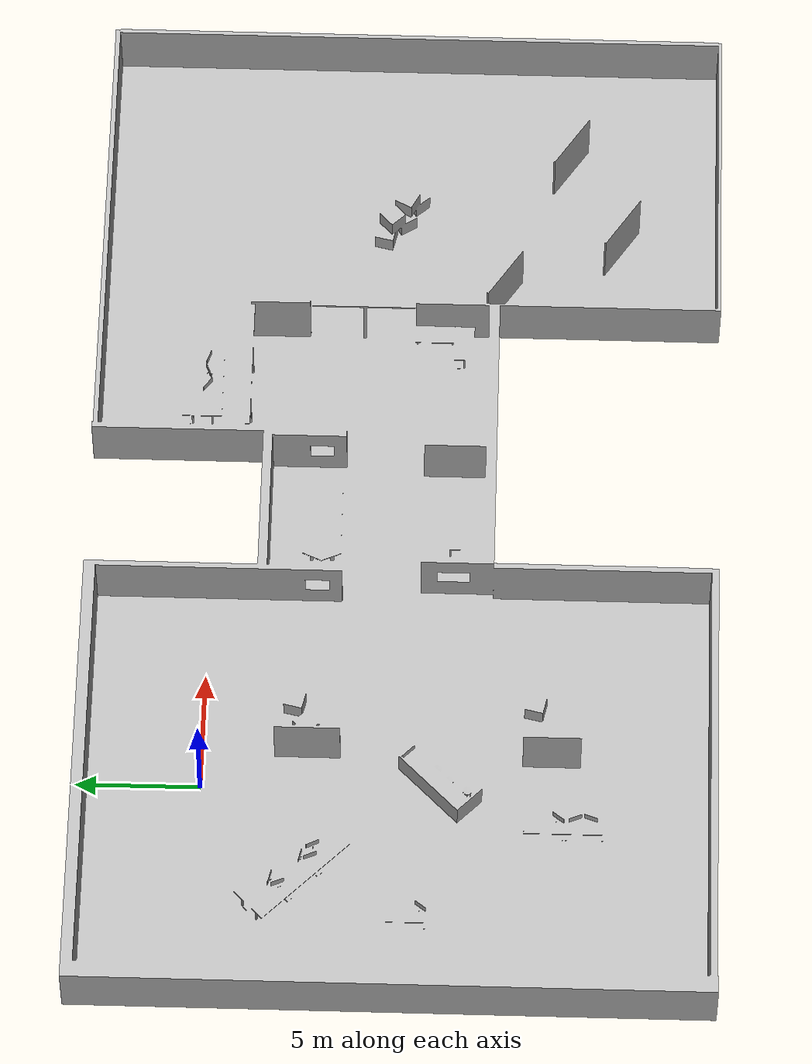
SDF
<sdf version="1.7">
 <world name="default">
  <light name="sun" type="directional">
   <pose>0 0 10 0 -0 0</pose>
   <diffuse>1 1 1 1</diffuse>
   <specular>0.2 0.2 0.2 1</specular>
   <attenuation>
    <range>1000</range>
    <constant>0.9</constant>
    <linear>0.01</linear>
    <quadratic>0.001</quadratic>
   </attenuation>
   <direction>-0.5 0.5 -1</direction>
   <spot><inner_angle>0</inner_angle><outer_angle>0</outer_angle><falloff>0</falloff></spot>
  </light>
  <physics name="default_physics" default="0" type="ode">
   <max_step_size>0.001</max_step_size>
   <real_time_factor>1</real_time_factor>
   <real_time_update_rate>1000</real_time_update_rate>
  </physics>
  <scene><ambient>1 1 1 1</ambient><background>0 0 0 0</background><shadows>1</shadows></scene>
  <spherical_coordinates>
   <surface_model>EARTH_WGS84</surface_model>
   <latitude_deg>0</latitude_deg>
   <longitude_deg>0</longitude_deg>
   <elevation>0</elevation>
   <heading_deg>0</heading_deg>
  </spherical_coordinates>
  <gravity>0 0 -9.8</gravity>
  <magnetic_field>6e-06 2.3e-05 -4.2e-05</magnetic_field>
  <atmosphere type="adiabatic"/>
  <audio><device>default</device></audio>
  <model name="office_geom">
   <link name="office_world_link">
    <inertial>
     <mass>1</mass>
     <inertia><ixx>1</ixx><ixy>0</ixy><ixz>0</ixz><iyy>1</iyy><iyz>0</iyz><izz>1</izz></inertia>
    </inertial>
    <collision name="office_world_link_collision">
     <geometry><mesh><scale>1 1 1</scale><uri>model://cpr_office/meshes/office1.dae</uri></mesh></geometry>
    </collision>
    <visual name="office_world_link_visual">
     <geometry><mesh><scale>1 1 1</scale><uri>model://cpr_office/meshes/office1.dae</uri></mesh></geometry>
    </visual>
   </link>
   <static>1</static>
   <pose>5.40131 -8.25151 0 0 -0 0</pose>
  </model>
 </world>
</sdf>
